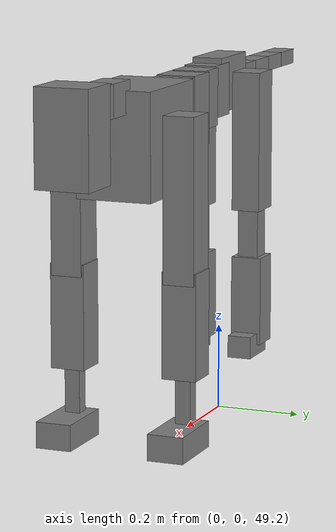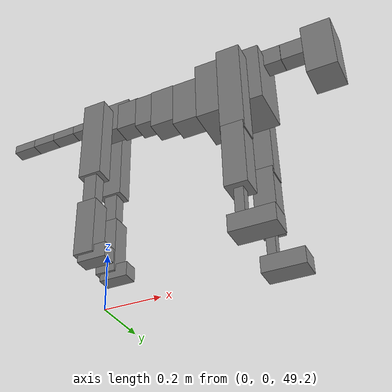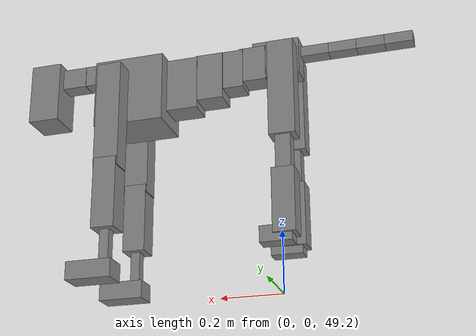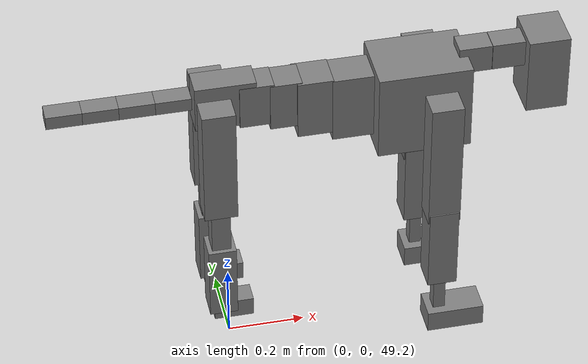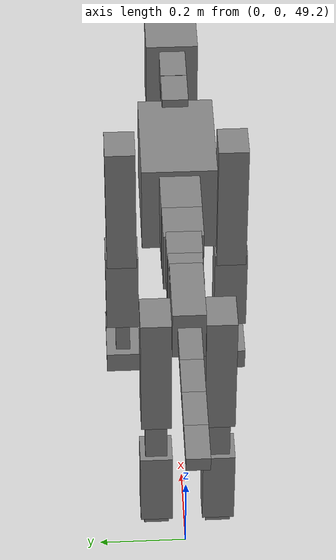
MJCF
<mujoco model="dog">

    <default>
        <joint armature="0.02" stiffness="1" damping="0.2" limited="true"/>
        <geom condim="3" friction="1 0.05 0.05" margin="0.01"/>
        <motor ctrllimited="true" ctrlrange="-1.0 1.0" forcelimited="true" gear="50"/>
    </default>

    <compiler inertiafromgeom="true" angle="radian"/>

    <option timestep="0.016" iterations="50" tolerance="1e-10" solver="Newton" jacobian="dense" cone="pyramidal"/>

    <size nconmax="20000" njmax="60000" nstack="5000000"/>
    <visual>
        <map force="0.1" zfar="30"/>
        <rgba haze="0.15 0.25 0.35 1"/>
        <quality shadowsize="2048"/>
        <global offwidth="800" offheight="800"/>
    </visual>

    <asset>
        <texture type="skybox" builtin="gradient" rgb1="0.3 0.5 0.7" rgb2="0 0 0" width="512" height="512"/>
        <texture name="texplane" type="2d" builtin="checker" rgb1=".2 .3 .4" rgb2=".1 0.15 0.2" width="512" height="512"
                 mark="cross" markrgb=".8 .8 .8"/>
        <texture name="texgeom" type="cube" builtin="flat" mark="cross" width="127" height="1278" rgb1="0.8 0.6 0.4"
                 rgb2="0.8 0.6 0.4" markrgb="1 1 1" random="0.01"/>

        <material name="matplane" reflectance="0.3" texture="texplane" texrepeat="1 1" texuniform="true"/>
        <material name="matgeom" texture="texgeom" texuniform="true" rgba="0.8 0.6 .4 1"/>
    </asset>

    <worldbody>
        <geom name="floor" pos="0 0 0" size="0 0 .25" type="plane" material="matplane" condim="3"/>

        <light directional="false" diffuse=".2 .2 .2" specular="0 0 0" pos="0 0 5" dir="0 0 -1" castshadow="false"/>
        <light mode="targetbodycom" target="torso" directional="false" diffuse=".8 .8 .8" specular="0.3 0.3 0.3"
               pos="0 0 4.0" dir="0 0 -1"/>

        <body name="root" pos="0 0 50">
            <freejoint name="root_1"/>
            <geom type="box" pos="0 0 -0.02" size="0.0774  0.0358  0.063" density="2030"/>

            <body name="spine1" pos="0.054 0 0">
                <joint name="spine1_y" axis="0 1 0" range="0 0.7" limited="true"/>
                <geom type="box" pos="0.02375 0 -0.03" size="0.04375  0.0375  0.05985" density="2030"/>

                <body name="spine2" pos="0.0612 0 0">
                    <joint name="spine2_y" axis="0 1 0" range="-0.15 0.15" limited="true"/>
                    <geom type="box" pos="0.03555  0  -0.04" size="0.04055  0.039  0.06615" density="2030"/>

                    <body name="spine3" pos="0.0730 0 0">
                        <joint name="spine3_y" axis="0 1 0" range="-0.15 0.15" limited="true"/>
                        <geom type="box" pos="0.03555  0  -0.057" size="0.04555  0.0445  0.081" density="2030"/>

                        <body name="spine4" pos="0.0780 0 0">
                            <joint name="spine4_y" axis="0 1 0" range="-0.15 0.15" limited="true"/>
                            <geom type="box" pos="0.05265  0  -0.07" size="0.05265  0.045  0.09135" density="2030"/>

                            <body name="torso" pos="0.1082 0 0">
                                <joint name="torso_y" axis="0 1 0" range="-0.15 0.15" limited="true"/>
                                <geom type="box" pos="0.11925  0  -0.085" size="0.11925  0.085  0.11745"
                                      density="2030"/>

                                <body name="neck1" pos="0.2160  0   0.0180">
                                    <joint name="neck1_y" axis="0 1 0" range="-1.2  -1" limited="true"/>
                                    <geom type="box" pos="0.0423  0  0" size="0.0423  0.03  0.036" density="2325"/>

                                    <body name="neck2" pos="0.0853  0  0">
                                        <joint name="neck2_y" axis="0 1 0" range="0.1  0" limited="true"/>
                                        <geom type="box" pos="0.0423  0  0" size="0.0423  0.03  0.036" density="2325"/>

                                        <body name="head" pos="0.0853  0  0">
                                            <joint name="head_y" axis="0 1 0" range="-0.3  -0.2" limited="true"/>
                                            <geom type="box" pos="0.0531  0  -0.055" size="0.0531  0.06  0.1044"
                                                  density="4030"/>

                                        </body>
                                    </body>
                                </body>

                                <body name="front_shoulder" pos="0.156  0   -0.0480">
                                    <joint name="front_shoulder_y" axis="0 1 0" range="-1 1.5" limited="true"/>
                                    <geom type="box" pos="0 0.13 -0.1535" size="0.0411  0.0351  0.1802" density="1158"/>
                                    <geom type="box" pos="0 -0.13 -0.1535" size="0.0411  0.0351  0.1802"
                                          density="1158"/>

                                    <body name="front_elbow" pos="0  0  -0.3070">
                                        <joint name="front_elbow_y" axis="0 1 0" range="-2 0" limited="true"/>
                                        <geom type="box" pos="0 0.13 -0.1166" size="0.0380  0.0388  0.1166"
                                              density="1081"/>
                                        <geom type="box" pos="0 -0.13 -0.1166" size="0.0380  0.0388  0.1166"
                                              density="1081"/>

                                        <body name="front_wrist" pos="0  0  -0.2332">
                                            <joint name="front_wrist_y" axis="0 1 0" range="-0.2 0" limited="true"/>
                                            <geom type="box" pos="0 0.13 -0.0584" size="0.0155  0.0172  0.0716"
                                                  density="1664"/>
                                            <geom type="box" pos="0 -0.13 -0.0584" size="0.0155  0.0172  0.0716"
                                                  density="1664"/>

                                            <body name="front_finger_end" pos="0  0  -0.1168">
                                                <joint name="front_finger_y" axis="0 1 0" range="-0.4 1"
                                                       limited="true"/>
                                                <geom type="box" pos="0.0403  0.13  -0.0142"
                                                      size="0.0740  0.0403  0.0292" density="1515"/>
                                                <geom type="box" pos="0.0403  -0.13  -0.0142"
                                                      size="0.0740  0.0403  0.0292" density="1515"/>

                                            </body>

                                        </body>
                                    </body>
                                </body>

                            </body>
                        </body>
                    </body>
                </body>
            </body>

            <body name="back_hip" pos="-0.03 0 -0.018">
                <joint name="back_hip_y" axis="0 1 0" range="-1.5 0.3" limited="true"/>
                <geom type="box" pos="0 0.07 -0.1394" size="0.0423  0.0332  0.1622" density="1154"/>
                <geom type="box" pos="0 -0.07 -0.1394" size="0.0423  0.0332  0.1622" density="1154"/>

                <body name="back_knee" pos="0  0  -0.2789">
                    <joint name="back_knee_y" axis="0 1 0" range="0 2.8" limited="true"/>
                    <geom type="box" pos="0 0.07 -0.0730" size="0.0245  0.0241  0.0886" density="1227"/>
                    <geom type="box" pos="0 -0.07 -0.0730" size="0.0245  0.0241  0.0886" density="1227"/>

                    <body name="back_ankle" pos="0  0  -0.1460">
                        <joint name="back_ankle_y" axis="0 1 0" range="-2.2 0" limited="true"/>
                        <geom type="box" pos="0 0.07 -0.0921" size="0.0360  0.0360  0.1033" density="1284"/>
                        <geom type="box" pos="0 -0.07 -0.0921" size="0.0360  0.0360  0.1033" density="1284"/>

                        <body name="back_toe_end" pos="0  0  -0.1841">
                            <joint name="back_toe_y" axis="0 1 0" range="-0.4 1" limited="true"/>
                            <geom type="box" pos="0.0278  0.07  -0.0108" size="0.0509  0.0278  0.0258" density="1515"/>
                            <geom type="box" pos="0.0278  -0.07  -0.0108" size="0.0509  0.0278  0.0258" density="1515"/>

                        </body>
                    </body>
                </body>
            </body>

            <body name="tail1" pos="-0.074 0 -0.006">
                <joint name="tail1_y" axis="0 1 0" range="-0.2 0.2" limited="true"/>
                <geom type="box" pos="-0.0536  0  0" size="0.045  0.025  0.0175" density="1587"/>

                <body name="tail2" pos="-0.09 0 0">
                    <joint name="tail2_y" axis="0 1 0" range="-0.2 0.2" limited="true"/>
                    <geom type="box" pos="-0.0536  0  0" size="0.045  0.025  0.0175" density="1587"/>

                    <body name="tail3" pos="-0.09 0 0">
                        <joint name="tail3_y" axis="0 1 0" range="-0.2 0.2" limited="true"/>
                        <geom type="box" pos="-0.0536  0  0" size="0.045  0.025  0.0175" density="1587"/>

                        <body name="tail4" pos="-0.09 0 0">
                            <joint name="tail4_y" axis="0 1 0" range="-0.2 0.2" limited="true"/>
                            <geom type="box" pos="-0.0536  0  0" size="0.045  0.025  0.0175" density="1587"/>

                        </body>
                    </body>
                </body>
            </body>
        </body>
    </worldbody>

    <actuator>
        <motor joint="spine1_y" forcerange="-150 150     "/>
        <motor joint="spine2_y" forcerange="-150 150     "/>
        <motor joint="spine3_y" forcerange="-150 150     "/>
        <motor joint="spine4_y" forcerange="-150 150     "/>
        <motor joint="torso_y" forcerange="-150 150     "/>
        <motor joint="neck1_y" forcerange="-100 100       "/>
        <motor joint="neck2_y" forcerange="-100 100       "/>
        <motor joint="head_y" forcerange="-150 150       "/>
        <motor joint="front_shoulder_y" forcerange="-139.29 194.85"/>
        <motor joint="front_elbow_y" forcerange="-195.43 186.77"/>
        <motor joint="front_wrist_y" forcerange="-58.69 78.99"/>
        <motor joint="front_finger_y" forcerange="-80.99 94.20"/>
        <motor joint="back_hip_y" forcerange="-387.45 254.64"/>
        <motor joint="back_knee_y" forcerange="-335.08 215.46"/>
        <motor joint="back_angle_y" forcerange="-231.99 243.68"/>
        <motor joint="back_toe_y" forcerange="-43.27 98.73"/>
        <motor joint="tail1_y" forcerange="-50 50     "/>
        <motor joint="tail2_y" forcerange="-50 50     "/>
        <motor joint="tail3_y" forcerange="-50 50     "/>
        <motor joint="tail4_y" forcerange="-50 50     "/>
    </actuator>
</mujoco>
